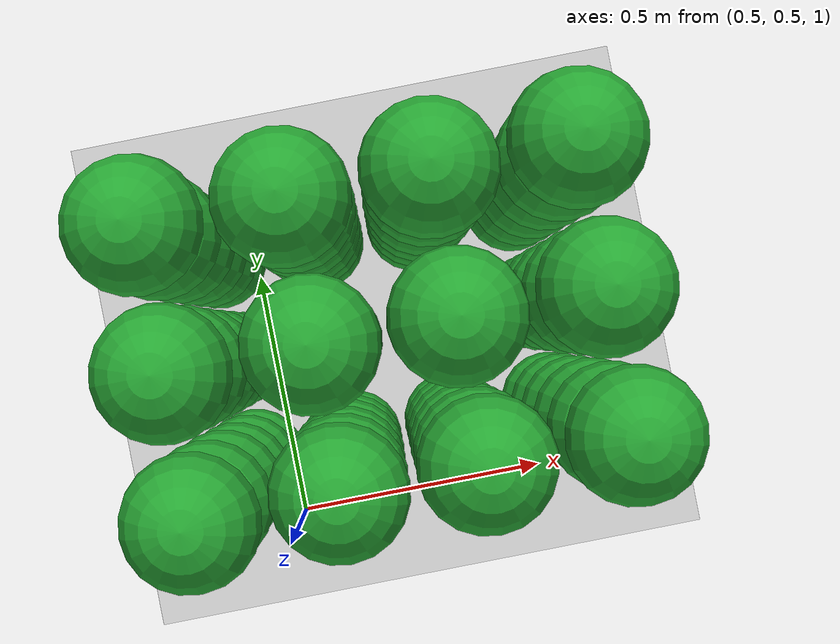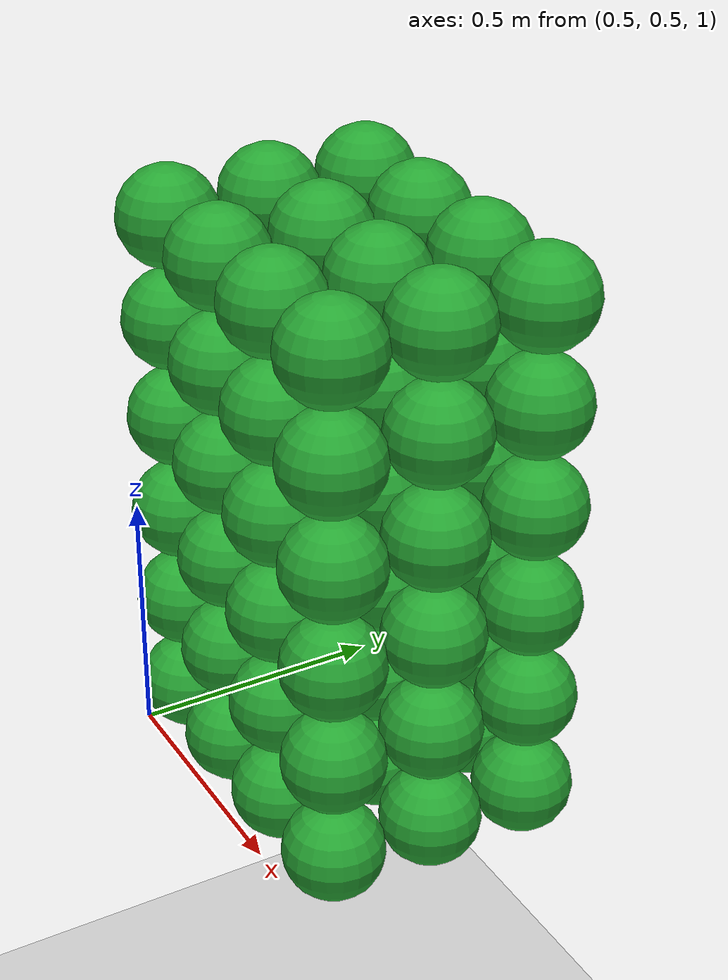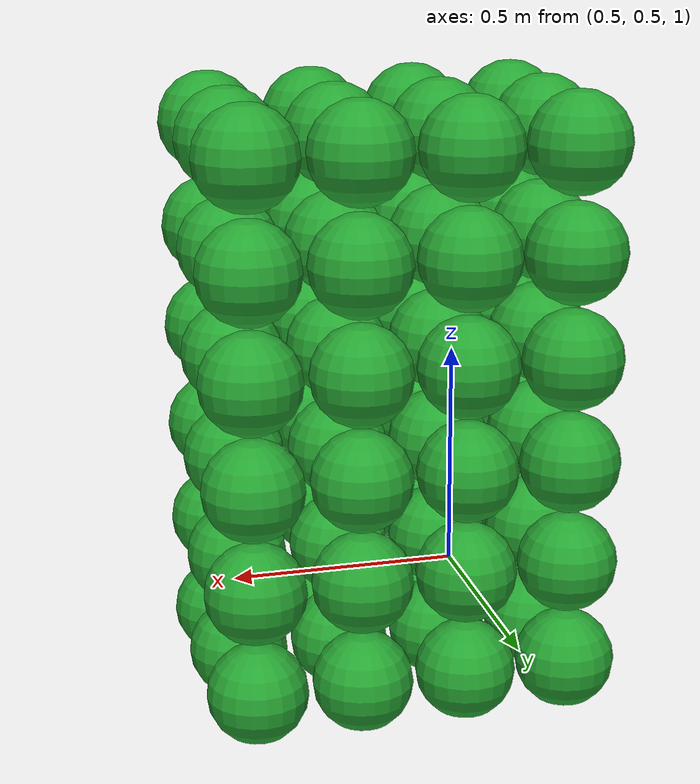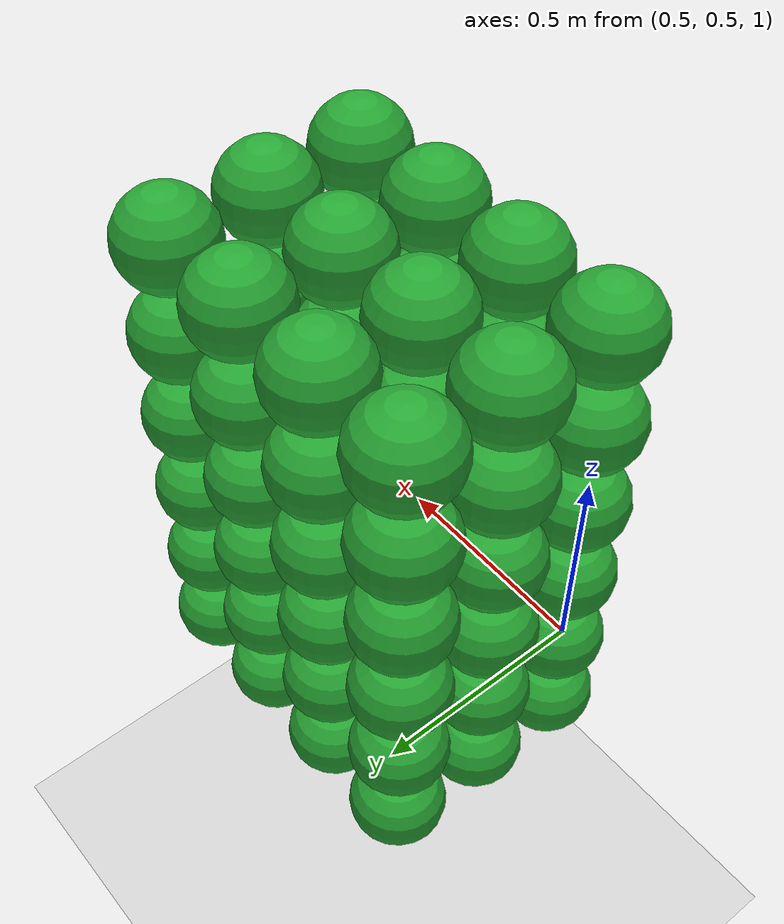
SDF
<sdf version="1.7">
 <world name="default">
  <model name="ground_plane">
   <static>1</static>
   <link name="link">
    <collision name="collision">
     <geometry><plane><normal>0 0 1</normal><size>100 100</size></plane></geometry>
     <surface>
      <contact><collide_bitmask>65535</collide_bitmask></contact>
      <friction><ode><mu>100</mu><mu2>50</mu2></ode></friction>
     </surface>
    </collision>
    <visual name="visual">
     <cast_shadows>0</cast_shadows>
     <geometry><plane><normal>0 0 1</normal><size>100 100</size></plane></geometry>
     <material>
      <script><uri>file://media/materials/scripts/gazebo.material</uri><name>Gazebo/Grey</name></script>
     </material>
    </visual>
   </link>
  </model>
  <model name="ball_90">
   <pose>0.420293 0.630439 1.000000 0 0 0</pose>
   <link name="link">
    <inertial><mass>10.000000</mass></inertial>
    <collision name="collision">
     <geometry><sphere><radius>0.100000</radius></sphere></geometry>
     <surface><friction><ode><mu>0</mu><mu2>0</mu2></ode></friction></surface>
    </collision>
    <visual name="visual">
     <geometry><sphere><radius>0.100000</radius></sphere></geometry>
     <material>
      <script><name>Gazebo/Green</name><uri>file://media/materials/scripts/gazebo.material</uri></script>
     </material>
    </visual>
   </link>
  </model>
  <model name="ball_91">
   <pose>0.420199 0.630298 1.210099 0 0 0</pose>
   <link name="link">
    <inertial><mass>10.000000</mass></inertial>
    <collision name="collision">
     <geometry><sphere><radius>0.100000</radius></sphere></geometry>
     <surface><friction><ode><mu>0</mu><mu2>0</mu2></ode></friction></surface>
    </collision>
    <visual name="visual">
     <geometry><sphere><radius>0.100000</radius></sphere></geometry>
     <material>
      <script><name>Gazebo/Green</name><uri>file://media/materials/scripts/gazebo.material</uri></script>
     </material>
    </visual>
   </link>
  </model>
  <model name="ball_92">
   <pose>0.419600 0.629400 1.419600 0 0 0</pose>
   <link name="link">
    <inertial><mass>10.000000</mass></inertial>
    <collision name="collision">
     <geometry><sphere><radius>0.100000</radius></sphere></geometry>
     <surface><friction><ode><mu>0</mu><mu2>0</mu2></ode></friction></surface>
    </collision>
    <visual name="visual">
     <geometry><sphere><radius>0.100000</radius></sphere></geometry>
     <material>
      <script><name>Gazebo/Green</name><uri>file://media/materials/scripts/gazebo.material</uri></script>
     </material>
    </visual>
   </link>
  </model>
  <model name="ball_93">
   <pose>0.420279 0.630419 1.630419 0 0 0</pose>
   <link name="link">
    <inertial><mass>10.000000</mass></inertial>
    <collision name="collision">
     <geometry><sphere><radius>0.100000</radius></sphere></geometry>
     <surface><friction><ode><mu>0</mu><mu2>0</mu2></ode></friction></surface>
    </collision>
    <visual name="visual">
     <geometry><sphere><radius>0.100000</radius></sphere></geometry>
     <material>
      <script><name>Gazebo/Green</name><uri>file://media/materials/scripts/gazebo.material</uri></script>
     </material>
    </visual>
   </link>
  </model>
  <model name="ball_94">
   <pose>0.419855 0.629783 1.839711 0 0 0</pose>
   <link name="link">
    <inertial><mass>10.000000</mass></inertial>
    <collision name="collision">
     <geometry><sphere><radius>0.100000</radius></sphere></geometry>
     <surface><friction><ode><mu>0</mu><mu2>0</mu2></ode></friction></surface>
    </collision>
    <visual name="visual">
     <geometry><sphere><radius>0.100000</radius></sphere></geometry>
     <material>
      <script><name>Gazebo/Green</name><uri>file://media/materials/scripts/gazebo.material</uri></script>
     </material>
    </visual>
   </link>
  </model>
  <model name="ball_95">
   <pose>0.419862 0.629793 2.049654 0 0 0</pose>
   <link name="link">
    <inertial><mass>10.000000</mass></inertial>
    <collision name="collision">
     <geometry><sphere><radius>0.100000</radius></sphere></geometry>
     <surface><friction><ode><mu>0</mu><mu2>0</mu2></ode></friction></surface>
    </collision>
    <visual name="visual">
     <geometry><sphere><radius>0.100000</radius></sphere></geometry>
     <material>
      <script><name>Gazebo/Green</name><uri>file://media/materials/scripts/gazebo.material</uri></script>
     </material>
    </visual>
   </link>
  </model>
  <model name="ball_96">
   <pose>0.420205 0.840410 1.000000 0 0 0</pose>
   <link name="link">
    <inertial><mass>10.000000</mass></inertial>
    <collision name="collision">
     <geometry><sphere><radius>0.100000</radius></sphere></geometry>
     <surface><friction><ode><mu>0</mu><mu2>0</mu2></ode></friction></surface>
    </collision>
    <visual name="visual">
     <geometry><sphere><radius>0.100000</radius></sphere></geometry>
     <material>
      <script><name>Gazebo/Green</name><uri>file://media/materials/scripts/gazebo.material</uri></script>
     </material>
    </visual>
   </link>
  </model>
  <model name="ball_97">
   <pose>0.419803 0.839606 1.209901 0 0 0</pose>
   <link name="link">
    <inertial><mass>10.000000</mass></inertial>
    <collision name="collision">
     <geometry><sphere><radius>0.100000</radius></sphere></geometry>
     <surface><friction><ode><mu>0</mu><mu2>0</mu2></ode></friction></surface>
    </collision>
    <visual name="visual">
     <geometry><sphere><radius>0.100000</radius></sphere></geometry>
     <material>
      <script><name>Gazebo/Green</name><uri>file://media/materials/scripts/gazebo.material</uri></script>
     </material>
    </visual>
   </link>
  </model>
  <model name="ball_98">
   <pose>0.419647 0.839294 1.419647 0 0 0</pose>
   <link name="link">
    <inertial><mass>10.000000</mass></inertial>
    <collision name="collision">
     <geometry><sphere><radius>0.100000</radius></sphere></geometry>
     <surface><friction><ode><mu>0</mu><mu2>0</mu2></ode></friction></surface>
    </collision>
    <visual name="visual">
     <geometry><sphere><radius>0.100000</radius></sphere></geometry>
     <material>
      <script><name>Gazebo/Green</name><uri>file://media/materials/scripts/gazebo.material</uri></script>
     </material>
    </visual>
   </link>
  </model>
  <model name="ball_99">
   <pose>0.419690 0.839380 1.629535 0 0 0</pose>
   <link name="link">
    <inertial><mass>10.000000</mass></inertial>
    <collision name="collision">
     <geometry><sphere><radius>0.100000</radius></sphere></geometry>
     <surface><friction><ode><mu>0</mu><mu2>0</mu2></ode></friction></surface>
    </collision>
    <visual name="visual">
     <geometry><sphere><radius>0.100000</radius></sphere></geometry>
     <material>
      <script><name>Gazebo/Green</name><uri>file://media/materials/scripts/gazebo.material</uri></script>
     </material>
    </visual>
   </link>
  </model>
  <model name="ball_100">
   <pose>0.420186 0.840372 1.840372 0 0 0</pose>
   <link name="link">
    <inertial><mass>10.000000</mass></inertial>
    <collision name="collision">
     <geometry><sphere><radius>0.100000</radius></sphere></geometry>
     <surface><friction><ode><mu>0</mu><mu2>0</mu2></ode></friction></surface>
    </collision>
    <visual name="visual">
     <geometry><sphere><radius>0.100000</radius></sphere></geometry>
     <material>
      <script><name>Gazebo/Green</name><uri>file://media/materials/scripts/gazebo.material</uri></script>
     </material>
    </visual>
   </link>
  </model>
  <model name="ball_101">
   <pose>0.420187 0.840375 2.050469 0 0 0</pose>
   <link name="link">
    <inertial><mass>10.000000</mass></inertial>
    <collision name="collision">
     <geometry><sphere><radius>0.100000</radius></sphere></geometry>
     <surface><friction><ode><mu>0</mu><mu2>0</mu2></ode></friction></surface>
    </collision>
    <visual name="visual">
     <geometry><sphere><radius>0.100000</radius></sphere></geometry>
     <material>
      <script><name>Gazebo/Green</name><uri>file://media/materials/scripts/gazebo.material</uri></script>
     </material>
    </visual>
   </link>
  </model>
  <model name="ball_102">
   <pose>0.420122 1.050306 1.000000 0 0 0</pose>
   <link name="link">
    <inertial><mass>10.000000</mass></inertial>
    <collision name="collision">
     <geometry><sphere><radius>0.100000</radius></sphere></geometry>
     <surface><friction><ode><mu>0</mu><mu2>0</mu2></ode></friction></surface>
    </collision>
    <visual name="visual">
     <geometry><sphere><radius>0.100000</radius></sphere></geometry>
     <material>
      <script><name>Gazebo/Green</name><uri>file://media/materials/scripts/gazebo.material</uri></script>
     </material>
    </visual>
   </link>
  </model>
  <model name="ball_103">
   <pose>0.419842 1.049605 1.209921 0 0 0</pose>
   <link name="link">
    <inertial><mass>10.000000</mass></inertial>
    <collision name="collision">
     <geometry><sphere><radius>0.100000</radius></sphere></geometry>
     <surface><friction><ode><mu>0</mu><mu2>0</mu2></ode></friction></surface>
    </collision>
    <visual name="visual">
     <geometry><sphere><radius>0.100000</radius></sphere></geometry>
     <material>
      <script><name>Gazebo/Green</name><uri>file://media/materials/scripts/gazebo.material</uri></script>
     </material>
    </visual>
   </link>
  </model>
  <model name="ball_104">
   <pose>0.419833 1.049582 1.419833 0 0 0</pose>
   <link name="link">
    <inertial><mass>10.000000</mass></inertial>
    <collision name="collision">
     <geometry><sphere><radius>0.100000</radius></sphere></geometry>
     <surface><friction><ode><mu>0</mu><mu2>0</mu2></ode></friction></surface>
    </collision>
    <visual name="visual">
     <geometry><sphere><radius>0.100000</radius></sphere></geometry>
     <material>
      <script><name>Gazebo/Green</name><uri>file://media/materials/scripts/gazebo.material</uri></script>
     </material>
    </visual>
   </link>
  </model>
  <model name="ball_105">
   <pose>0.419659 1.049148 1.629489 0 0 0</pose>
   <link name="link">
    <inertial><mass>10.000000</mass></inertial>
    <collision name="collision">
     <geometry><sphere><radius>0.100000</radius></sphere></geometry>
     <surface><friction><ode><mu>0</mu><mu2>0</mu2></ode></friction></surface>
    </collision>
    <visual name="visual">
     <geometry><sphere><radius>0.100000</radius></sphere></geometry>
     <material>
      <script><name>Gazebo/Green</name><uri>file://media/materials/scripts/gazebo.material</uri></script>
     </material>
    </visual>
   </link>
  </model>
  <model name="ball_106">
   <pose>0.419723 1.049307 1.839446 0 0 0</pose>
   <link name="link">
    <inertial><mass>10.000000</mass></inertial>
    <collision name="collision">
     <geometry><sphere><radius>0.100000</radius></sphere></geometry>
     <surface><friction><ode><mu>0</mu><mu2>0</mu2></ode></friction></surface>
    </collision>
    <visual name="visual">
     <geometry><sphere><radius>0.100000</radius></sphere></geometry>
     <material>
      <script><name>Gazebo/Green</name><uri>file://media/materials/scripts/gazebo.material</uri></script>
     </material>
    </visual>
   </link>
  </model>
  <model name="ball_107">
   <pose>0.420067 1.050168 2.050168 0 0 0</pose>
   <link name="link">
    <inertial><mass>10.000000</mass></inertial>
    <collision name="collision">
     <geometry><sphere><radius>0.100000</radius></sphere></geometry>
     <surface><friction><ode><mu>0</mu><mu2>0</mu2></ode></friction></surface>
    </collision>
    <visual name="visual">
     <geometry><sphere><radius>0.100000</radius></sphere></geometry>
     <material>
      <script><name>Gazebo/Green</name><uri>file://media/materials/scripts/gazebo.material</uri></script>
     </material>
    </visual>
   </link>
  </model>
  <model name="ball_126">
   <pose>0.629906 0.629906 1.000000 0 0 0</pose>
   <link name="link">
    <inertial><mass>10.000000</mass></inertial>
    <collision name="collision">
     <geometry><sphere><radius>0.100000</radius></sphere></geometry>
     <surface><friction><ode><mu>0</mu><mu2>0</mu2></ode></friction></surface>
    </collision>
    <visual name="visual">
     <geometry><sphere><radius>0.100000</radius></sphere></geometry>
     <material>
      <script><name>Gazebo/Green</name><uri>file://media/materials/scripts/gazebo.material</uri></script>
     </material>
    </visual>
   </link>
  </model>
  <model name="ball_127">
   <pose>0.630027 0.630027 1.210009 0 0 0</pose>
   <link name="link">
    <inertial><mass>10.000000</mass></inertial>
    <collision name="collision">
     <geometry><sphere><radius>0.100000</radius></sphere></geometry>
     <surface><friction><ode><mu>0</mu><mu2>0</mu2></ode></friction></surface>
    </collision>
    <visual name="visual">
     <geometry><sphere><radius>0.100000</radius></sphere></geometry>
     <material>
      <script><name>Gazebo/Green</name><uri>file://media/materials/scripts/gazebo.material</uri></script>
     </material>
    </visual>
   </link>
  </model>
  <model name="ball_128">
   <pose>0.630424 0.630424 1.420283 0 0 0</pose>
   <link name="link">
    <inertial><mass>10.000000</mass></inertial>
    <collision name="collision">
     <geometry><sphere><radius>0.100000</radius></sphere></geometry>
     <surface><friction><ode><mu>0</mu><mu2>0</mu2></ode></friction></surface>
    </collision>
    <visual name="visual">
     <geometry><sphere><radius>0.100000</radius></sphere></geometry>
     <material>
      <script><name>Gazebo/Green</name><uri>file://media/materials/scripts/gazebo.material</uri></script>
     </material>
    </visual>
   </link>
  </model>
  <model name="ball_129">
   <pose>0.629738 0.629738 1.629738 0 0 0</pose>
   <link name="link">
    <inertial><mass>10.000000</mass></inertial>
    <collision name="collision">
     <geometry><sphere><radius>0.100000</radius></sphere></geometry>
     <surface><friction><ode><mu>0</mu><mu2>0</mu2></ode></friction></surface>
    </collision>
    <visual name="visual">
     <geometry><sphere><radius>0.100000</radius></sphere></geometry>
     <material>
      <script><name>Gazebo/Green</name><uri>file://media/materials/scripts/gazebo.material</uri></script>
     </material>
    </visual>
   </link>
  </model>
  <model name="ball_130">
   <pose>0.630253 0.630253 1.840337 0 0 0</pose>
   <link name="link">
    <inertial><mass>10.000000</mass></inertial>
    <collision name="collision">
     <geometry><sphere><radius>0.100000</radius></sphere></geometry>
     <surface><friction><ode><mu>0</mu><mu2>0</mu2></ode></friction></surface>
    </collision>
    <visual name="visual">
     <geometry><sphere><radius>0.100000</radius></sphere></geometry>
     <material>
      <script><name>Gazebo/Green</name><uri>file://media/materials/scripts/gazebo.material</uri></script>
     </material>
    </visual>
   </link>
  </model>
  <model name="ball_131">
   <pose>0.630224 0.630224 2.050373 0 0 0</pose>
   <link name="link">
    <inertial><mass>10.000000</mass></inertial>
    <collision name="collision">
     <geometry><sphere><radius>0.100000</radius></sphere></geometry>
     <surface><friction><ode><mu>0</mu><mu2>0</mu2></ode></friction></surface>
    </collision>
    <visual name="visual">
     <geometry><sphere><radius>0.100000</radius></sphere></geometry>
     <material>
      <script><name>Gazebo/Green</name><uri>file://media/materials/scripts/gazebo.material</uri></script>
     </material>
    </visual>
   </link>
  </model>
  <model name="ball_132">
   <pose>0.630225 0.840299 1.000000 0 0 0</pose>
   <link name="link">
    <inertial><mass>10.000000</mass></inertial>
    <collision name="collision">
     <geometry><sphere><radius>0.100000</radius></sphere></geometry>
     <surface><friction><ode><mu>0</mu><mu2>0</mu2></ode></friction></surface>
    </collision>
    <visual name="visual">
     <geometry><sphere><radius>0.100000</radius></sphere></geometry>
     <material>
      <script><name>Gazebo/Green</name><uri>file://media/materials/scripts/gazebo.material</uri></script>
     </material>
    </visual>
   </link>
  </model>
  <model name="ball_133">
   <pose>0.630510 0.840680 1.210170 0 0 0</pose>
   <link name="link">
    <inertial><mass>10.000000</mass></inertial>
    <collision name="collision">
     <geometry><sphere><radius>0.100000</radius></sphere></geometry>
     <surface><friction><ode><mu>0</mu><mu2>0</mu2></ode></friction></surface>
    </collision>
    <visual name="visual">
     <geometry><sphere><radius>0.100000</radius></sphere></geometry>
     <material>
      <script><name>Gazebo/Green</name><uri>file://media/materials/scripts/gazebo.material</uri></script>
     </material>
    </visual>
   </link>
  </model>
  <model name="ball_134">
   <pose>0.629710 0.839613 1.419806 0 0 0</pose>
   <link name="link">
    <inertial><mass>10.000000</mass></inertial>
    <collision name="collision">
     <geometry><sphere><radius>0.100000</radius></sphere></geometry>
     <surface><friction><ode><mu>0</mu><mu2>0</mu2></ode></friction></surface>
    </collision>
    <visual name="visual">
     <geometry><sphere><radius>0.100000</radius></sphere></geometry>
     <material>
      <script><name>Gazebo/Green</name><uri>file://media/materials/scripts/gazebo.material</uri></script>
     </material>
    </visual>
   </link>
  </model>
  <model name="ball_135">
   <pose>0.629879 0.839839 1.629879 0 0 0</pose>
   <link name="link">
    <inertial><mass>10.000000</mass></inertial>
    <collision name="collision">
     <geometry><sphere><radius>0.100000</radius></sphere></geometry>
     <surface><friction><ode><mu>0</mu><mu2>0</mu2></ode></friction></surface>
    </collision>
    <visual name="visual">
     <geometry><sphere><radius>0.100000</radius></sphere></geometry>
     <material>
      <script><name>Gazebo/Green</name><uri>file://media/materials/scripts/gazebo.material</uri></script>
     </material>
    </visual>
   </link>
  </model>
  <model name="ball_136">
   <pose>0.630077 0.840103 1.840103 0 0 0</pose>
   <link name="link">
    <inertial><mass>10.000000</mass></inertial>
    <collision name="collision">
     <geometry><sphere><radius>0.100000</radius></sphere></geometry>
     <surface><friction><ode><mu>0</mu><mu2>0</mu2></ode></friction></surface>
    </collision>
    <visual name="visual">
     <geometry><sphere><radius>0.100000</radius></sphere></geometry>
     <material>
      <script><name>Gazebo/Green</name><uri>file://media/materials/scripts/gazebo.material</uri></script>
     </material>
    </visual>
   </link>
  </model>
  <model name="ball_137">
   <pose>0.630199 0.840266 2.050332 0 0 0</pose>
   <link name="link">
    <inertial><mass>10.000000</mass></inertial>
    <collision name="collision">
     <geometry><sphere><radius>0.100000</radius></sphere></geometry>
     <surface><friction><ode><mu>0</mu><mu2>0</mu2></ode></friction></surface>
    </collision>
    <visual name="visual">
     <geometry><sphere><radius>0.100000</radius></sphere></geometry>
     <material>
      <script><name>Gazebo/Green</name><uri>file://media/materials/scripts/gazebo.material</uri></script>
     </material>
    </visual>
   </link>
  </model>
  <model name="ball_138">
   <pose>0.629565 1.049276 1.000000 0 0 0</pose>
   <link name="link">
    <inertial><mass>10.000000</mass></inertial>
    <collision name="collision">
     <geometry><sphere><radius>0.100000</radius></sphere></geometry>
     <surface><friction><ode><mu>0</mu><mu2>0</mu2></ode></friction></surface>
    </collision>
    <visual name="visual">
     <geometry><sphere><radius>0.100000</radius></sphere></geometry>
     <material>
      <script><name>Gazebo/Green</name><uri>file://media/materials/scripts/gazebo.material</uri></script>
     </material>
    </visual>
   </link>
  </model>
  <model name="ball_139">
   <pose>0.630358 1.050597 1.210119 0 0 0</pose>
   <link name="link">
    <inertial><mass>10.000000</mass></inertial>
    <collision name="collision">
     <geometry><sphere><radius>0.100000</radius></sphere></geometry>
     <surface><friction><ode><mu>0</mu><mu2>0</mu2></ode></friction></surface>
    </collision>
    <visual name="visual">
     <geometry><sphere><radius>0.100000</radius></sphere></geometry>
     <material>
      <script><name>Gazebo/Green</name><uri>file://media/materials/scripts/gazebo.material</uri></script>
     </material>
    </visual>
   </link>
  </model>
  <model name="ball_140">
   <pose>0.629496 1.049160 1.419664 0 0 0</pose>
   <link name="link">
    <inertial><mass>10.000000</mass></inertial>
    <collision name="collision">
     <geometry><sphere><radius>0.100000</radius></sphere></geometry>
     <surface><friction><ode><mu>0</mu><mu2>0</mu2></ode></friction></surface>
    </collision>
    <visual name="visual">
     <geometry><sphere><radius>0.100000</radius></sphere></geometry>
     <material>
      <script><name>Gazebo/Green</name><uri>file://media/materials/scripts/gazebo.material</uri></script>
     </material>
    </visual>
   </link>
  </model>
  <model name="ball_141">
   <pose>0.630207 1.050345 1.630207 0 0 0</pose>
   <link name="link">
    <inertial><mass>10.000000</mass></inertial>
    <collision name="collision">
     <geometry><sphere><radius>0.100000</radius></sphere></geometry>
     <surface><friction><ode><mu>0</mu><mu2>0</mu2></ode></friction></surface>
    </collision>
    <visual name="visual">
     <geometry><sphere><radius>0.100000</radius></sphere></geometry>
     <material>
      <script><name>Gazebo/Green</name><uri>file://media/materials/scripts/gazebo.material</uri></script>
     </material>
    </visual>
   </link>
  </model>
  <model name="ball_142">
   <pose>0.630571 1.050952 1.840761 0 0 0</pose>
   <link name="link">
    <inertial><mass>10.000000</mass></inertial>
    <collision name="collision">
     <geometry><sphere><radius>0.100000</radius></sphere></geometry>
     <surface><friction><ode><mu>0</mu><mu2>0</mu2></ode></friction></surface>
    </collision>
    <visual name="visual">
     <geometry><sphere><radius>0.100000</radius></sphere></geometry>
     <material>
      <script><name>Gazebo/Green</name><uri>file://media/materials/scripts/gazebo.material</uri></script>
     </material>
    </visual>
   </link>
  </model>
  <model name="ball_143">
   <pose>0.629393 1.048988 2.048988 0 0 0</pose>
   <link name="link">
    <inertial><mass>10.000000</mass></inertial>
    <collision name="collision">
     <geometry><sphere><radius>0.100000</radius></sphere></geometry>
     <surface><friction><ode><mu>0</mu><mu2>0</mu2></ode></friction></surface>
    </collision>
    <visual name="visual">
     <geometry><sphere><radius>0.100000</radius></sphere></geometry>
     <material>
      <script><name>Gazebo/Green</name><uri>file://media/materials/scripts/gazebo.material</uri></script>
     </material>
    </visual>
   </link>
  </model>
  <model name="ball_162">
   <pose>0.839429 0.629572 1.000000 0 0 0</pose>
   <link name="link">
    <inertial><mass>10.000000</mass></inertial>
    <collision name="collision">
     <geometry><sphere><radius>0.100000</radius></sphere></geometry>
     <surface><friction><ode><mu>0</mu><mu2>0</mu2></ode></friction></surface>
    </collision>
    <visual name="visual">
     <geometry><sphere><radius>0.100000</radius></sphere></geometry>
     <material>
      <script><name>Gazebo/Green</name><uri>file://media/materials/scripts/gazebo.material</uri></script>
     </material>
    </visual>
   </link>
  </model>
  <model name="ball_163">
   <pose>0.840086 0.630065 1.210022 0 0 0</pose>
   <link name="link">
    <inertial><mass>10.000000</mass></inertial>
    <collision name="collision">
     <geometry><sphere><radius>0.100000</radius></sphere></geometry>
     <surface><friction><ode><mu>0</mu><mu2>0</mu2></ode></friction></surface>
    </collision>
    <visual name="visual">
     <geometry><sphere><radius>0.100000</radius></sphere></geometry>
     <material>
      <script><name>Gazebo/Green</name><uri>file://media/materials/scripts/gazebo.material</uri></script>
     </material>
    </visual>
   </link>
  </model>
  <model name="ball_164">
   <pose>0.839639 0.629729 1.419820 0 0 0</pose>
   <link name="link">
    <inertial><mass>10.000000</mass></inertial>
    <collision name="collision">
     <geometry><sphere><radius>0.100000</radius></sphere></geometry>
     <surface><friction><ode><mu>0</mu><mu2>0</mu2></ode></friction></surface>
    </collision>
    <visual name="visual">
     <geometry><sphere><radius>0.100000</radius></sphere></geometry>
     <material>
      <script><name>Gazebo/Green</name><uri>file://media/materials/scripts/gazebo.material</uri></script>
     </material>
    </visual>
   </link>
  </model>
  <model name="ball_165">
   <pose>0.839530 0.629647 1.629647 0 0 0</pose>
   <link name="link">
    <inertial><mass>10.000000</mass></inertial>
    <collision name="collision">
     <geometry><sphere><radius>0.100000</radius></sphere></geometry>
     <surface><friction><ode><mu>0</mu><mu2>0</mu2></ode></friction></surface>
    </collision>
    <visual name="visual">
     <geometry><sphere><radius>0.100000</radius></sphere></geometry>
     <material>
      <script><name>Gazebo/Green</name><uri>file://media/materials/scripts/gazebo.material</uri></script>
     </material>
    </visual>
   </link>
  </model>
  <model name="ball_166">
   <pose>0.840565 0.630424 1.840565 0 0 0</pose>
   <link name="link">
    <inertial><mass>10.000000</mass></inertial>
    <collision name="collision">
     <geometry><sphere><radius>0.100000</radius></sphere></geometry>
     <surface><friction><ode><mu>0</mu><mu2>0</mu2></ode></friction></surface>
    </collision>
    <visual name="visual">
     <geometry><sphere><radius>0.100000</radius></sphere></geometry>
     <material>
      <script><name>Gazebo/Green</name><uri>file://media/materials/scripts/gazebo.material</uri></script>
     </material>
    </visual>
   </link>
  </model>
  <model name="ball_167">
   <pose>0.839892 0.629919 2.049865 0 0 0</pose>
   <link name="link">
    <inertial><mass>10.000000</mass></inertial>
    <collision name="collision">
     <geometry><sphere><radius>0.100000</radius></sphere></geometry>
     <surface><friction><ode><mu>0</mu><mu2>0</mu2></ode></friction></surface>
    </collision>
    <visual name="visual">
     <geometry><sphere><radius>0.100000</radius></sphere></geometry>
     <material>
      <script><name>Gazebo/Green</name><uri>file://media/materials/scripts/gazebo.material</uri></script>
     </material>
    </visual>
   </link>
  </model>
  <model name="ball_168">
   <pose>0.840682 0.840682 1.000000 0 0 0</pose>
   <link name="link">
    <inertial><mass>10.000000</mass></inertial>
    <collision name="collision">
     <geometry><sphere><radius>0.100000</radius></sphere></geometry>
     <surface><friction><ode><mu>0</mu><mu2>0</mu2></ode></friction></surface>
    </collision>
    <visual name="visual">
     <geometry><sphere><radius>0.100000</radius></sphere></geometry>
     <material>
      <script><name>Gazebo/Green</name><uri>file://media/materials/scripts/gazebo.material</uri></script>
     </material>
    </visual>
   </link>
  </model>
  <model name="ball_169">
   <pose>0.840122 0.840122 1.210031 0 0 0</pose>
   <link name="link">
    <inertial><mass>10.000000</mass></inertial>
    <collision name="collision">
     <geometry><sphere><radius>0.100000</radius></sphere></geometry>
     <surface><friction><ode><mu>0</mu><mu2>0</mu2></ode></friction></surface>
    </collision>
    <visual name="visual">
     <geometry><sphere><radius>0.100000</radius></sphere></geometry>
     <material>
      <script><name>Gazebo/Green</name><uri>file://media/materials/scripts/gazebo.material</uri></script>
     </material>
    </visual>
   </link>
  </model>
  <model name="ball_170">
   <pose>0.839744 0.839744 1.419872 0 0 0</pose>
   <link name="link">
    <inertial><mass>10.000000</mass></inertial>
    <collision name="collision">
     <geometry><sphere><radius>0.100000</radius></sphere></geometry>
     <surface><friction><ode><mu>0</mu><mu2>0</mu2></ode></friction></surface>
    </collision>
    <visual name="visual">
     <geometry><sphere><radius>0.100000</radius></sphere></geometry>
     <material>
      <script><name>Gazebo/Green</name><uri>file://media/materials/scripts/gazebo.material</uri></script>
     </material>
    </visual>
   </link>
  </model>
  <model name="ball_171">
   <pose>0.839363 0.839363 1.629522 0 0 0</pose>
   <link name="link">
    <inertial><mass>10.000000</mass></inertial>
    <collision name="collision">
     <geometry><sphere><radius>0.100000</radius></sphere></geometry>
     <surface><friction><ode><mu>0</mu><mu2>0</mu2></ode></friction></surface>
    </collision>
    <visual name="visual">
     <geometry><sphere><radius>0.100000</radius></sphere></geometry>
     <material>
      <script><name>Gazebo/Green</name><uri>file://media/materials/scripts/gazebo.material</uri></script>
     </material>
    </visual>
   </link>
  </model>
  <model name="ball_172">
   <pose>0.840455 0.840455 1.840455 0 0 0</pose>
   <link name="link">
    <inertial><mass>10.000000</mass></inertial>
    <collision name="collision">
     <geometry><sphere><radius>0.100000</radius></sphere></geometry>
     <surface><friction><ode><mu>0</mu><mu2>0</mu2></ode></friction></surface>
    </collision>
    <visual name="visual">
     <geometry><sphere><radius>0.100000</radius></sphere></geometry>
     <material>
      <script><name>Gazebo/Green</name><uri>file://media/materials/scripts/gazebo.material</uri></script>
     </material>
    </visual>
   </link>
  </model>
  <model name="ball_173">
   <pose>0.839187 0.839187 2.048984 0 0 0</pose>
   <link name="link">
    <inertial><mass>10.000000</mass></inertial>
    <collision name="collision">
     <geometry><sphere><radius>0.100000</radius></sphere></geometry>
     <surface><friction><ode><mu>0</mu><mu2>0</mu2></ode></friction></surface>
    </collision>
    <visual name="visual">
     <geometry><sphere><radius>0.100000</radius></sphere></geometry>
     <material>
      <script><name>Gazebo/Green</name><uri>file://media/materials/scripts/gazebo.material</uri></script>
     </material>
    </visual>
   </link>
  </model>
  <model name="ball_174">
   <pose>0.839884 1.049855 1.000000 0 0 0</pose>
   <link name="link">
    <inertial><mass>10.000000</mass></inertial>
    <collision name="collision">
     <geometry><sphere><radius>0.100000</radius></sphere></geometry>
     <surface><friction><ode><mu>0</mu><mu2>0</mu2></ode></friction></surface>
    </collision>
    <visual name="visual">
     <geometry><sphere><radius>0.100000</radius></sphere></geometry>
     <material>
      <script><name>Gazebo/Green</name><uri>file://media/materials/scripts/gazebo.material</uri></script>
     </material>
    </visual>
   </link>
  </model>
  <model name="ball_175">
   <pose>0.839581 1.049476 1.209895 0 0 0</pose>
   <link name="link">
    <inertial><mass>10.000000</mass></inertial>
    <collision name="collision">
     <geometry><sphere><radius>0.100000</radius></sphere></geometry>
     <surface><friction><ode><mu>0</mu><mu2>0</mu2></ode></friction></surface>
    </collision>
    <visual name="visual">
     <geometry><sphere><radius>0.100000</radius></sphere></geometry>
     <material>
      <script><name>Gazebo/Green</name><uri>file://media/materials/scripts/gazebo.material</uri></script>
     </material>
    </visual>
   </link>
  </model>
  <model name="ball_176">
   <pose>0.839838 1.049797 1.419919 0 0 0</pose>
   <link name="link">
    <inertial><mass>10.000000</mass></inertial>
    <collision name="collision">
     <geometry><sphere><radius>0.100000</radius></sphere></geometry>
     <surface><friction><ode><mu>0</mu><mu2>0</mu2></ode></friction></surface>
    </collision>
    <visual name="visual">
     <geometry><sphere><radius>0.100000</radius></sphere></geometry>
     <material>
      <script><name>Gazebo/Green</name><uri>file://media/materials/scripts/gazebo.material</uri></script>
     </material>
    </visual>
   </link>
  </model>
  <model name="ball_177">
   <pose>0.839362 1.049203 1.629522 0 0 0</pose>
   <link name="link">
    <inertial><mass>10.000000</mass></inertial>
    <collision name="collision">
     <geometry><sphere><radius>0.100000</radius></sphere></geometry>
     <surface><friction><ode><mu>0</mu><mu2>0</mu2></ode></friction></surface>
    </collision>
    <visual name="visual">
     <geometry><sphere><radius>0.100000</radius></sphere></geometry>
     <material>
      <script><name>Gazebo/Green</name><uri>file://media/materials/scripts/gazebo.material</uri></script>
     </material>
    </visual>
   </link>
  </model>
  <model name="ball_178">
   <pose>0.840658 1.050822 1.840658 0 0 0</pose>
   <link name="link">
    <inertial><mass>10.000000</mass></inertial>
    <collision name="collision">
     <geometry><sphere><radius>0.100000</radius></sphere></geometry>
     <surface><friction><ode><mu>0</mu><mu2>0</mu2></ode></friction></surface>
    </collision>
    <visual name="visual">
     <geometry><sphere><radius>0.100000</radius></sphere></geometry>
     <material>
      <script><name>Gazebo/Green</name><uri>file://media/materials/scripts/gazebo.material</uri></script>
     </material>
    </visual>
   </link>
  </model>
  <model name="ball_179">
   <pose>0.839706 1.049633 2.049633 0 0 0</pose>
   <link name="link">
    <inertial><mass>10.000000</mass></inertial>
    <collision name="collision">
     <geometry><sphere><radius>0.100000</radius></sphere></geometry>
     <surface><friction><ode><mu>0</mu><mu2>0</mu2></ode></friction></surface>
    </collision>
    <visual name="visual">
     <geometry><sphere><radius>0.100000</radius></sphere></geometry>
     <material>
      <script><name>Gazebo/Green</name><uri>file://media/materials/scripts/gazebo.material</uri></script>
     </material>
    </visual>
   </link>
  </model>
  <model name="ball_198">
   <pose>1.049601 0.629761 1.000000 0 0 0</pose>
   <link name="link">
    <inertial><mass>10.000000</mass></inertial>
    <collision name="collision">
     <geometry><sphere><radius>0.100000</radius></sphere></geometry>
     <surface><friction><ode><mu>0</mu><mu2>0</mu2></ode></friction></surface>
    </collision>
    <visual name="visual">
     <geometry><sphere><radius>0.100000</radius></sphere></geometry>
     <material>
      <script><name>Gazebo/Green</name><uri>file://media/materials/scripts/gazebo.material</uri></script>
     </material>
    </visual>
   </link>
  </model>
  <model name="ball_199">
   <pose>1.050317 0.630190 1.210063 0 0 0</pose>
   <link name="link">
    <inertial><mass>10.000000</mass></inertial>
    <collision name="collision">
     <geometry><sphere><radius>0.100000</radius></sphere></geometry>
     <surface><friction><ode><mu>0</mu><mu2>0</mu2></ode></friction></surface>
    </collision>
    <visual name="visual">
     <geometry><sphere><radius>0.100000</radius></sphere></geometry>
     <material>
      <script><name>Gazebo/Green</name><uri>file://media/materials/scripts/gazebo.material</uri></script>
     </material>
    </visual>
   </link>
  </model>
  <model name="ball_200">
   <pose>1.050119 0.630071 1.420048 0 0 0</pose>
   <link name="link">
    <inertial><mass>10.000000</mass></inertial>
    <collision name="collision">
     <geometry><sphere><radius>0.100000</radius></sphere></geometry>
     <surface><friction><ode><mu>0</mu><mu2>0</mu2></ode></friction></surface>
    </collision>
    <visual name="visual">
     <geometry><sphere><radius>0.100000</radius></sphere></geometry>
     <material>
      <script><name>Gazebo/Green</name><uri>file://media/materials/scripts/gazebo.material</uri></script>
     </material>
    </visual>
   </link>
  </model>
  <model name="ball_201">
   <pose>1.050753 0.630452 1.630452 0 0 0</pose>
   <link name="link">
    <inertial><mass>10.000000</mass></inertial>
    <collision name="collision">
     <geometry><sphere><radius>0.100000</radius></sphere></geometry>
     <surface><friction><ode><mu>0</mu><mu2>0</mu2></ode></friction></surface>
    </collision>
    <visual name="visual">
     <geometry><sphere><radius>0.100000</radius></sphere></geometry>
     <material>
      <script><name>Gazebo/Green</name><uri>file://media/materials/scripts/gazebo.material</uri></script>
     </material>
    </visual>
   </link>
  </model>
  <model name="ball_202">
   <pose>1.049166 0.629500 1.839333 0 0 0</pose>
   <link name="link">
    <inertial><mass>10.000000</mass></inertial>
    <collision name="collision">
     <geometry><sphere><radius>0.100000</radius></sphere></geometry>
     <surface><friction><ode><mu>0</mu><mu2>0</mu2></ode></friction></surface>
    </collision>
    <visual name="visual">
     <geometry><sphere><radius>0.100000</radius></sphere></geometry>
     <material>
      <script><name>Gazebo/Green</name><uri>file://media/materials/scripts/gazebo.material</uri></script>
     </material>
    </visual>
   </link>
  </model>
  <model name="ball_203">
   <pose>1.049547 0.629728 2.049547 0 0 0</pose>
   <link name="link">
    <inertial><mass>10.000000</mass></inertial>
    <collision name="collision">
     <geometry><sphere><radius>0.100000</radius></sphere></geometry>
     <surface><friction><ode><mu>0</mu><mu2>0</mu2></ode></friction></surface>
    </collision>
    <visual name="visual">
     <geometry><sphere><radius>0.100000</radius></sphere></geometry>
     <material>
      <script><name>Gazebo/Green</name><uri>file://media/materials/scripts/gazebo.material</uri></script>
     </material>
    </visual>
   </link>
  </model>
  <model name="ball_204">
   <pose>1.050808 0.840646 1.000000 0 0 0</pose>
   <link name="link">
    <inertial><mass>10.000000</mass></inertial>
    <collision name="collision">
     <geometry><sphere><radius>0.100000</radius></sphere></geometry>
     <surface><friction><ode><mu>0</mu><mu2>0</mu2></ode></friction></surface>
    </collision>
    <visual name="visual">
     <geometry><sphere><radius>0.100000</radius></sphere></geometry>
     <material>
      <script><name>Gazebo/Green</name><uri>file://media/materials/scripts/gazebo.material</uri></script>
     </material>
    </visual>
   </link>
  </model>
  <model name="ball_205">
   <pose>1.049212 0.839369 1.209842 0 0 0</pose>
   <link name="link">
    <inertial><mass>10.000000</mass></inertial>
    <collision name="collision">
     <geometry><sphere><radius>0.100000</radius></sphere></geometry>
     <surface><friction><ode><mu>0</mu><mu2>0</mu2></ode></friction></surface>
    </collision>
    <visual name="visual">
     <geometry><sphere><radius>0.100000</radius></sphere></geometry>
     <material>
      <script><name>Gazebo/Green</name><uri>file://media/materials/scripts/gazebo.material</uri></script>
     </material>
    </visual>
   </link>
  </model>
  <model name="ball_206">
   <pose>1.050141 0.840112 1.420056 0 0 0</pose>
   <link name="link">
    <inertial><mass>10.000000</mass></inertial>
    <collision name="collision">
     <geometry><sphere><radius>0.100000</radius></sphere></geometry>
     <surface><friction><ode><mu>0</mu><mu2>0</mu2></ode></friction></surface>
    </collision>
    <visual name="visual">
     <geometry><sphere><radius>0.100000</radius></sphere></geometry>
     <material>
      <script><name>Gazebo/Green</name><uri>file://media/materials/scripts/gazebo.material</uri></script>
     </material>
    </visual>
   </link>
  </model>
  <model name="ball_207">
   <pose>1.049163 0.839331 1.629498 0 0 0</pose>
   <link name="link">
    <inertial><mass>10.000000</mass></inertial>
    <collision name="collision">
     <geometry><sphere><radius>0.100000</radius></sphere></geometry>
     <surface><friction><ode><mu>0</mu><mu2>0</mu2></ode></friction></surface>
    </collision>
    <visual name="visual">
     <geometry><sphere><radius>0.100000</radius></sphere></geometry>
     <material>
      <script><name>Gazebo/Green</name><uri>file://media/materials/scripts/gazebo.material</uri></script>
     </material>
    </visual>
   </link>
  </model>
  <model name="ball_208">
   <pose>1.050060 0.840048 1.840048 0 0 0</pose>
   <link name="link">
    <inertial><mass>10.000000</mass></inertial>
    <collision name="collision">
     <geometry><sphere><radius>0.100000</radius></sphere></geometry>
     <surface><friction><ode><mu>0</mu><mu2>0</mu2></ode></friction></surface>
    </collision>
    <visual name="visual">
     <geometry><sphere><radius>0.100000</radius></sphere></geometry>
     <material>
      <script><name>Gazebo/Green</name><uri>file://media/materials/scripts/gazebo.material</uri></script>
     </material>
    </visual>
   </link>
  </model>
  <model name="ball_209">
   <pose>1.049282 0.839426 2.049282 0 0 0</pose>
   <link name="link">
    <inertial><mass>10.000000</mass></inertial>
    <collision name="collision">
     <geometry><sphere><radius>0.100000</radius></sphere></geometry>
     <surface><friction><ode><mu>0</mu><mu2>0</mu2></ode></friction></surface>
    </collision>
    <visual name="visual">
     <geometry><sphere><radius>0.100000</radius></sphere></geometry>
     <material>
      <script><name>Gazebo/Green</name><uri>file://media/materials/scripts/gazebo.material</uri></script>
     </material>
    </visual>
   </link>
  </model>
  <model name="ball_210">
   <pose>1.050379 1.050379 1.000000 0 0 0</pose>
   <link name="link">
    <inertial><mass>10.000000</mass></inertial>
    <collision name="collision">
     <geometry><sphere><radius>0.100000</radius></sphere></geometry>
     <surface><friction><ode><mu>0</mu><mu2>0</mu2></ode></friction></surface>
    </collision>
    <visual name="visual">
     <geometry><sphere><radius>0.100000</radius></sphere></geometry>
     <material>
      <script><name>Gazebo/Green</name><uri>file://media/materials/scripts/gazebo.material</uri></script>
     </material>
    </visual>
   </link>
  </model>
  <model name="ball_211">
   <pose>1.050055 1.050055 1.210011 0 0 0</pose>
   <link name="link">
    <inertial><mass>10.000000</mass></inertial>
    <collision name="collision">
     <geometry><sphere><radius>0.100000</radius></sphere></geometry>
     <surface><friction><ode><mu>0</mu><mu2>0</mu2></ode></friction></surface>
    </collision>
    <visual name="visual">
     <geometry><sphere><radius>0.100000</radius></sphere></geometry>
     <material>
      <script><name>Gazebo/Green</name><uri>file://media/materials/scripts/gazebo.material</uri></script>
     </material>
    </visual>
   </link>
  </model>
  <model name="ball_212">
   <pose>1.050086 1.050086 1.420034 0 0 0</pose>
   <link name="link">
    <inertial><mass>10.000000</mass></inertial>
    <collision name="collision">
     <geometry><sphere><radius>0.100000</radius></sphere></geometry>
     <surface><friction><ode><mu>0</mu><mu2>0</mu2></ode></friction></surface>
    </collision>
    <visual name="visual">
     <geometry><sphere><radius>0.100000</radius></sphere></geometry>
     <material>
      <script><name>Gazebo/Green</name><uri>file://media/materials/scripts/gazebo.material</uri></script>
     </material>
    </visual>
   </link>
  </model>
  <model name="ball_213">
   <pose>1.050554 1.050554 1.630332 0 0 0</pose>
   <link name="link">
    <inertial><mass>10.000000</mass></inertial>
    <collision name="collision">
     <geometry><sphere><radius>0.100000</radius></sphere></geometry>
     <surface><friction><ode><mu>0</mu><mu2>0</mu2></ode></friction></surface>
    </collision>
    <visual name="visual">
     <geometry><sphere><radius>0.100000</radius></sphere></geometry>
     <material>
      <script><name>Gazebo/Green</name><uri>file://media/materials/scripts/gazebo.material</uri></script>
     </material>
    </visual>
   </link>
  </model>
  <model name="ball_214">
   <pose>1.049445 1.049445 1.839556 0 0 0</pose>
   <link name="link">
    <inertial><mass>10.000000</mass></inertial>
    <collision name="collision">
     <geometry><sphere><radius>0.100000</radius></sphere></geometry>
     <surface><friction><ode><mu>0</mu><mu2>0</mu2></ode></friction></surface>
    </collision>
    <visual name="visual">
     <geometry><sphere><radius>0.100000</radius></sphere></geometry>
     <material>
      <script><name>Gazebo/Green</name><uri>file://media/materials/scripts/gazebo.material</uri></script>
     </material>
    </visual>
   </link>
  </model>
  <model name="ball_215">
   <pose>1.049708 1.049708 2.049708 0 0 0</pose>
   <link name="link">
    <inertial><mass>10.000000</mass></inertial>
    <collision name="collision">
     <geometry><sphere><radius>0.100000</radius></sphere></geometry>
     <surface><friction><ode><mu>0</mu><mu2>0</mu2></ode></friction></surface>
    </collision>
    <visual name="visual">
     <geometry><sphere><radius>0.100000</radius></sphere></geometry>
     <material>
      <script><name>Gazebo/Green</name><uri>file://media/materials/scripts/gazebo.material</uri></script>
     </material>
    </visual>
   </link>
  </model>
 </world>
</sdf>
